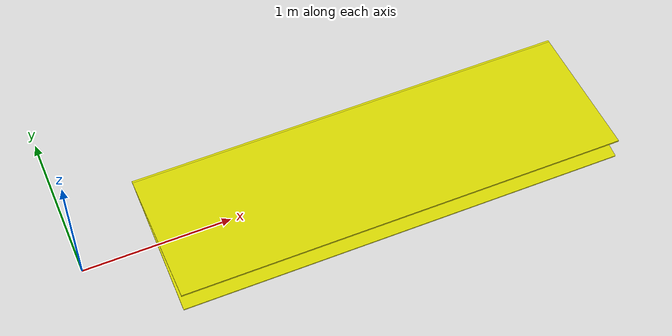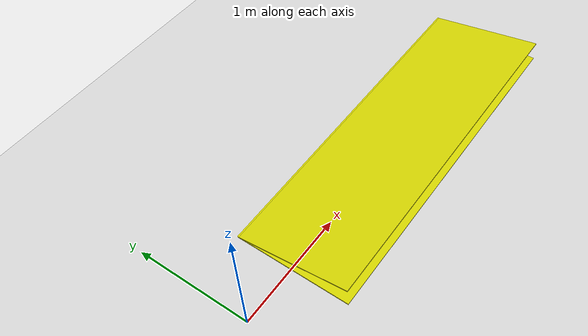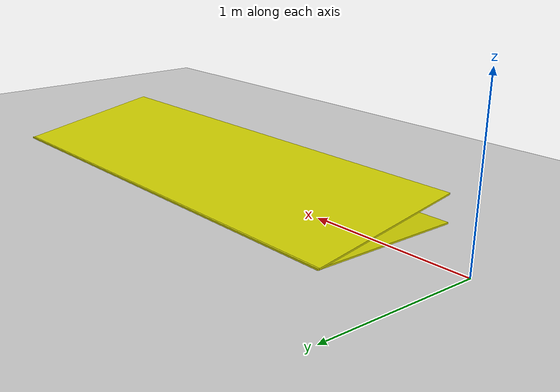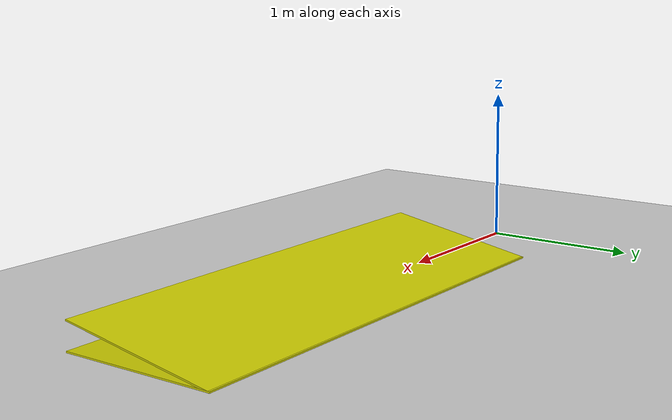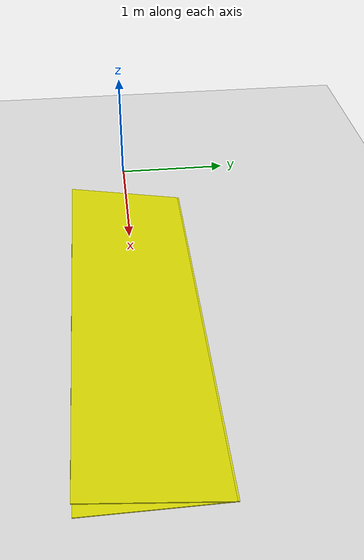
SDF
<?xml version="1.0" ?>
<sdf version="1.5">
    <world name="default">

        <physics type="ode">
        <max_step_size>0.0002</max_step_size>
        <real_time_factor>1</real_time_factor>
        <real_time_update_rate>5000</real_time_update_rate>
        <gravity>0 0 -9.81</gravity>
            <ode>
                <solver>
                <type>quick</type>
                <iters>50</iters>
                <sor>1.3</sor>
                </solver>
                <constraints>
                <cfm>0.0</cfm>
                <erp>0.2</erp>
                <contact_max_correcting_vel>10.0</contact_max_correcting_vel>
                <contact_surface_layer>0.001</contact_surface_layer>
                </constraints>
            </ode>
        </physics>

        <scene>
        <sky>
            <clouds>
                <speed>12</speed>
            </clouds>
        </sky>
        </scene>
        <!-- A global light source -->
        <include>
            <uri>model://sun</uri>
        </include>
        <!-- A ground plane -->
        <include>
            <uri>model://ground_plane</uri>
        </include>

        <!-- 障碍物模型 -->
        <model name="obstacle_course">
            <static>true</static>

            <!-- 斜坡 - 三棱柱形状 -->
            <link name="ramp">
                <pose>2 0 0.0 0 0 1.5708</pose> <!-- x轴方向后移2m，旋转90度使宽度朝向x轴 -->
                <collision name="ramp_collision">
                    <geometry>
                        <box>
                            <size>1.0 3.0 0.01</size> <!-- 宽1m，长3m，底板厚度1cm -->
                        </box>
                    </geometry>
                    <pose>0 0 0.005 0 0 0</pose> <!-- 底板居中 -->
                </collision>
                <visual name="ramp_visual_base">
                    <geometry>
                        <box>
                            <size>1.0 3.0 0.01</size>
                        </box>
                    </geometry>
                    <pose>0 0 0.005 0 0 0</pose>
                    <material>
                        <ambient>0.8 0.8 0.0 1</ambient>  <!-- 黄色 -->
                        <diffuse>0.8 0.8 0.0 1</diffuse>
                    </material>
                </visual>

                <!-- 斜面部分 -->
                <collision name="ramp_collision_slope">
                    <geometry>
                        <box>
                            <size>1.0 3.0 0.01</size>
                        </box>
                    </geometry>
                    <pose>0 0 0.090824 0 0.174533 0</pose> <!-- 斜面角度10度，中心高度约是长度一半*sin(10°) -->
                </collision>
                <visual name="ramp_visual_slope">
                    <geometry>
                        <box>
                            <size>1.0 3.0 0.01</size>
                        </box>
                    </geometry>
                    <pose>0 0 0.090824 0 0.174533 0</pose>
                    <material>
                        <ambient>0.8 0.8 0.0 1</ambient>  <!-- 黄色 -->
                        <diffuse>0.8 0.8 0.0 1</diffuse>
                    </material>
                </visual>
            </link>

        </model>

    </world>
</sdf>
